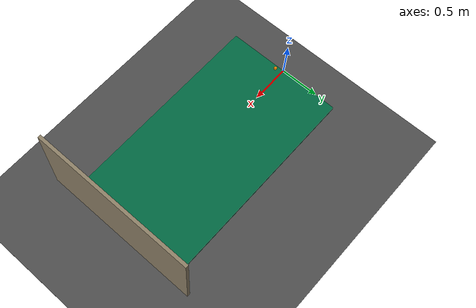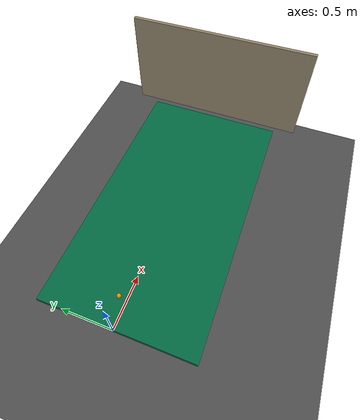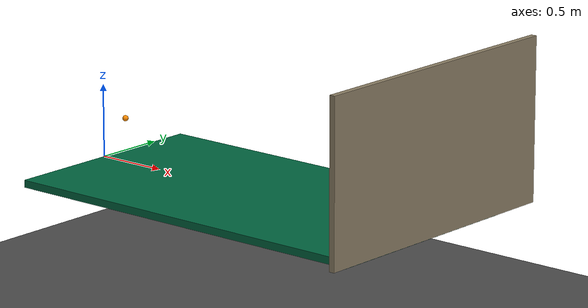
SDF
<?xml version="1.0"?>
<sdf version="1.9">
  <world name="table_tennis">
    <physics name="1ms" type="dart">
      <max_step_size>0.001</max_step_size>
      <real_time_factor>1.0</real_time_factor>
    </physics>

    <plugin filename="gz-sim-physics-system" name="gz::sim::systems::Physics"/>
    <plugin filename="gz-sim-scene-broadcaster-system" name="gz::sim::systems::SceneBroadcaster"/>
    <plugin filename="gz-sim-user-commands-system" name="gz::sim::systems::UserCommands"/>

    <gravity>0 0 -9.81</gravity>

    <model name="ground"><static>true</static>
      <pose>0 0 -0.76 0 0 0</pose>
      <link name="l"><collision name="c"><geometry><plane><normal>0 0 1</normal>
        <size>20 20</size></plane></geometry></collision>
        <visual name="v"><geometry><box><size>20 20 0.01</size></box></geometry>
        <material><ambient>0.3 0.3 0.3 1</ambient></material></visual>
      </link>
    </model>

    <model name="table"><static>true</static>
      <pose>1.37 0 -0.025 0 0 0</pose>
      <link name="top">
        <collision name="c"><geometry><box><size>2.74 1.525 0.05</size></box></geometry>
          <surface><bounce><restitution_coefficient>0.9</restitution_coefficient><threshold>0</threshold></bounce>
          <friction><ode><mu>0.25</mu><mu2>0.25</mu2></ode></friction></surface>
        </collision>
        <visual name="v"><geometry><box><size>2.74 1.525 0.05</size></box></geometry>
          <material><ambient>0.0 0.35 0.2 1</ambient><diffuse>0.0 0.4 0.25 1</diffuse></material></visual>
      </link>
    </model>

    <!-- contact board: front face at x=2.80, 6 cm behind the end line.
         Low restitution: a sensing plate, not a wall to rally against. -->
    <model name="board"><static>true</static>
      <pose>2.82 0 0.55 0 0 0</pose>
      <link name="l">
        <collision name="c"><geometry><box><size>0.04 2.0 1.1</size></box></geometry>
          <surface><bounce><restitution_coefficient>0.3</restitution_coefficient><threshold>0</threshold></bounce>
          <friction><ode><mu>0.4</mu><mu2>0.4</mu2></ode></friction></surface>
        </collision>
        <visual name="v"><geometry><box><size>0.04 2.0 1.1</size></box></geometry>
          <material><ambient>0.5 0.45 0.35 1</ambient><diffuse>0.55 0.5 0.4 1</diffuse></material></visual>
      </link>
    </model>

    <include><uri>model://pingpong_ball</uri></include>
  </world>
</sdf>

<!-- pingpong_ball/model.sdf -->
<sdf version="1.9">
  <model name="pingpong_ball">
    <!-- start 0.2 m in, centered, 0.30 m above the table top (z=0) -->
    <pose>0.2 0 0.3 0 0 0</pose>
    <link name="ball_link">
      <inertial>
        <mass>0.0027</mass>
        <inertia>
          <ixx>4.32e-7</ixx><iyy>4.32e-7</iyy><izz>4.32e-7</izz>
          <ixy>0</ixy><ixz>0</ixz><iyz>0</iyz>
        </inertia>
      </inertial>
      <collision name="col">
        <geometry><sphere><radius>0.02</radius></sphere></geometry>
        <surface>
          <bounce><restitution_coefficient>0.9</restitution_coefficient><threshold>0</threshold></bounce>
          <friction><ode><mu>0.25</mu><mu2>0.25</mu2></ode></friction>
        </surface>
      </collision>
      <visual name="vis">
        <geometry><sphere><radius>0.02</radius></sphere></geometry>
        <material><ambient>1 0.5 0 1</ambient><diffuse>1 0.55 0 1</diffuse></material>
      </visual>
    </link>

    <plugin filename="gz-sim-pose-publisher-system" name="gz::sim::systems::PosePublisher">
      <publish_model_pose>true</publish_model_pose>
      <publish_link_pose>false</publish_link_pose>
      <use_pose_vector_msg>true</use_pose_vector_msg>
      <update_frequency>1000</update_frequency>
    </plugin>

    <!-- aero + launch; edit init_linear / init_angular per working condition.
         topspin = +y; constants match ttsim/physics.py -->
    <plugin filename="AeroLaunch" name="ttsim::AeroLaunch">
      <link_name>ball_link</link_name>
      <mass>0.0027</mass>
      <drag_coeff>0.1117</drag_coeff>
      <magnus_coeff>0.0016</magnus_coeff>
      <init_linear>6 0 0.9</init_linear>
      <init_angular>0 400 0</init_angular>
    </plugin>
  </model>
</sdf>
